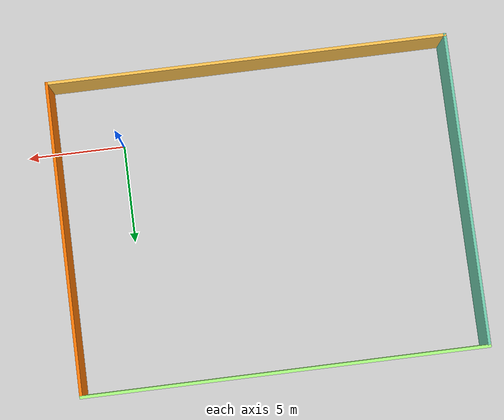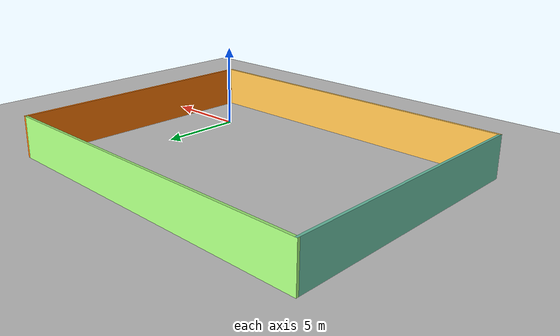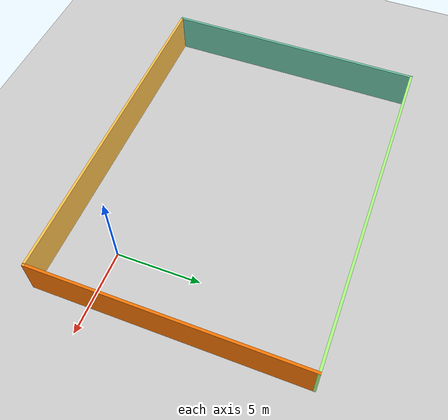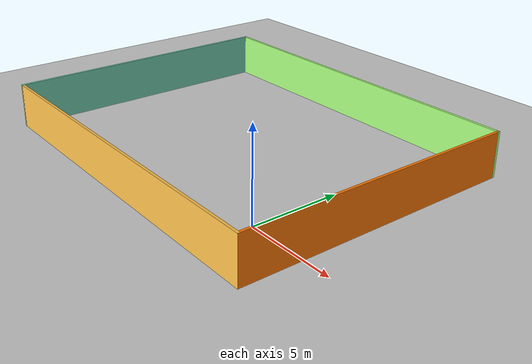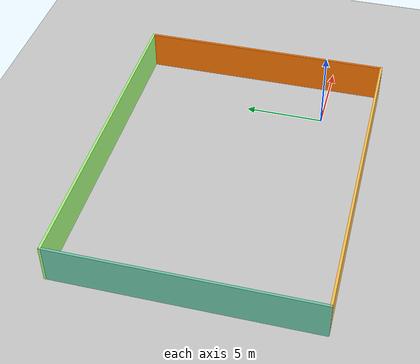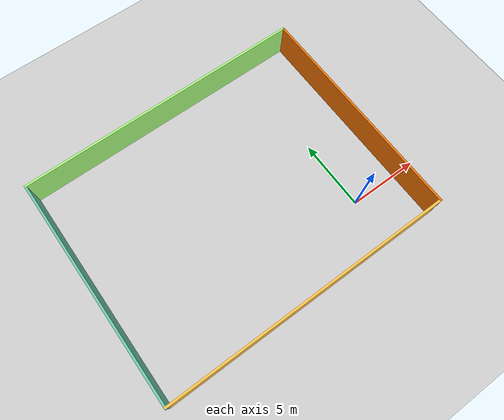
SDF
<sdf version="1.6">
 <world name="default">
  <light name="sun" type="directional">
   <pose>0 0 10 0 -0 0</pose>
   <diffuse>0.8 0.8 0.8 1</diffuse>
   <specular>0.2 0.2 0.2 1</specular>
   <attenuation>
    <range>1000</range>
    <constant>0.9</constant>
    <linear>0.01</linear>
    <quadratic>0.001</quadratic>
   </attenuation>
   <direction>-0.5 0.1 -0.9</direction>
  </light>
  <model name="ground_plane">
   <static>1</static>
   <link name="link">
    <collision name="collision">
     <geometry><plane><normal>0 0 1</normal><size>100 100</size></plane></geometry>
     <surface>
      <contact><collide_bitmask>65535</collide_bitmask></contact>
      <friction><ode><mu>100</mu><mu2>50</mu2></ode></friction>
     </surface>
    </collision>
    <visual name="visual">
     <cast_shadows>0</cast_shadows>
     <geometry><plane><normal>0 0 1</normal><size>100 100</size></plane></geometry>
     <material>
      <script><uri>file://media/materials/scripts/gazebo.material</uri><name>Gazebo/Grey</name></script>
     </material>
    </visual>
   </link>
  </model>
  <gravity>0 0 -9.8</gravity>
  <magnetic_field>6e-06 2.3e-05 -4.2e-05</magnetic_field>
  <atmosphere type="adiabatic"/>
  <physics name="default_physics" default="0" type="ode">
   <max_step_size>0.001</max_step_size>
   <real_time_factor>1</real_time_factor>
   <real_time_update_rate>1000</real_time_update_rate>
  </physics>
  <scene><ambient>0.4 0.4 0.4 1</ambient><background>0.7 0.7 0.7 1</background><shadows>1</shadows></scene>
  <spherical_coordinates>
   <surface_model>EARTH_WGS84</surface_model>
   <latitude_deg>0</latitude_deg>
   <longitude_deg>0</longitude_deg>
   <elevation>0</elevation>
   <heading_deg>0</heading_deg>
  </spherical_coordinates>
  <physics name="default_physics" default="0" type="ode">
   <ode>
    <solver>
     <type>quick</type>
     <iters>20</iters>
     <sor>1.3</sor>
     <use_dynamic_moi_rescaling>0</use_dynamic_moi_rescaling>
    </solver>
    <constraints>
     <cfm>0</cfm>
     <erp>0.2</erp>
     <contact_max_correcting_vel>100</contact_max_correcting_vel>
     <contact_surface_layer>0.001</contact_surface_layer>
    </constraints>
   </ode>
   <max_step_size>0.002</max_step_size>
   <real_time_factor>1</real_time_factor>
   <real_time_update_rate>500</real_time_update_rate>
  </physics>
  <audio><device>default</device></audio>
  <model name="square_building">
   <pose>-6.8037 4.62081 0 0 -0 0</pose>
   <link name="Wall_4">
    <collision name="Wall_4_Collision">
     <geometry><box><size>16 0.15 2.5</size></box></geometry>
     <pose>0 0 1.25 0 -0 0</pose>
    </collision>
    <visual name="Wall_4_Visual">
     <pose>0 0 1.25 0 -0 0</pose>
     <geometry><box><size>16 0.15 2.5</size></box></geometry>
     <material>
      <script><uri>file://media/materials/scripts/gazebo.material</uri><name>Gazebo/Grey</name></script>
      <ambient>0.435294 0.796078 0.67451 1</ambient>
     </material>
     <meta><layer>0</layer></meta>
    </visual>
    <pose>-10.175 -0 0 0 -0 -1.5708</pose>
   </link>
   <link name="Wall_5">
    <collision name="Wall_5_Collision">
     <geometry><box><size>20.5 0.15 2.5</size></box></geometry>
     <pose>0 0 1.25 0 -0 0</pose>
    </collision>
    <visual name="Wall_5_Visual">
     <pose>0 0 1.25 0 -0 0</pose>
     <geometry><box><size>20.5 0.15 2.5</size></box></geometry>
     <material>
      <script><uri>file://media/materials/scripts/gazebo.material</uri><name>Gazebo/Grey</name></script>
      <ambient>1 0.764706 0.305882 1</ambient>
     </material>
     <meta><layer>0</layer></meta>
    </visual>
    <pose>-0 -7.925 0 0 -0 0</pose>
   </link>
   <link name="Wall_6">
    <collision name="Wall_6_Collision">
     <geometry><box><size>16 0.15 2.5</size></box></geometry>
     <pose>0 0 1.25 0 -0 0</pose>
    </collision>
    <visual name="Wall_6_Visual">
     <pose>0 0 1.25 0 -0 0</pose>
     <geometry><box><size>16 0.15 2.5</size></box></geometry>
     <material>
      <script><uri>file://media/materials/scripts/gazebo.material</uri><name>Gazebo/Grey</name></script>
      <ambient>0.996078 0.47451 0.0196078 1</ambient>
     </material>
     <meta><layer>0</layer></meta>
    </visual>
    <pose>10.175 -0 0 0 -0 1.5708</pose>
   </link>
   <link name="Wall_7">
    <collision name="Wall_7_Collision">
     <geometry><box><size>20.5 0.15 2.5</size></box></geometry>
     <pose>0 0 1.25 0 -0 0</pose>
    </collision>
    <visual name="Wall_7_Visual">
     <pose>0 0 1.25 0 -0 0</pose>
     <geometry><box><size>20.5 0.15 2.5</size></box></geometry>
     <material>
      <script><uri>file://media/materials/scripts/gazebo.material</uri><name>Gazebo/Grey</name></script>
      <ambient>0.666667 1 0.498039 1</ambient>
     </material>
     <meta><layer>0</layer></meta>
    </visual>
    <pose>-0 7.925 0 0 -0 3.14159</pose>
   </link>
   <static>1</static>
  </model>
 </world>
</sdf>
